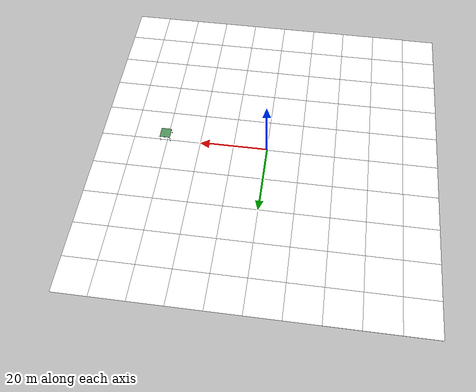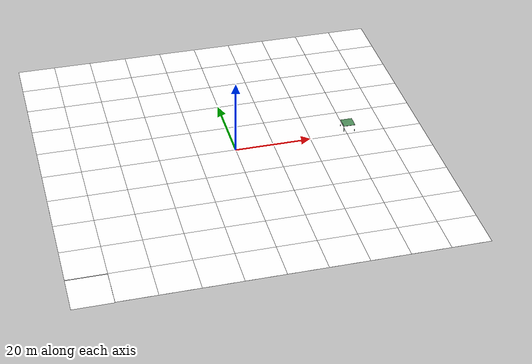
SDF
<sdf version="1.9">
 <world name="aruco_plain">
  <physics type="ode">
   <max_step_size>0.001</max_step_size>
   <real_time_factor>1.0</real_time_factor>
   <real_time_update_rate>1000</real_time_update_rate>
  </physics>
  <plugin filename="gz-sim-physics-system" name="gz::sim::systems::Physics"/>
  <plugin filename="gz-sim-sensors-system" name="gz::sim::systems::Sensors">
   <render_engine>ogre2</render_engine>
  </plugin>
  <plugin filename="gz-sim-user-commands-system" name="gz::sim::systems::UserCommands"/>
  <plugin filename="gz-sim-scene-broadcaster-system" name="gz::sim::systems::SceneBroadcaster"/>
  <plugin filename="gz-sim-imu-system" name="gz::sim::systems::Imu"/>
  <gravity>0 0 -9.8</gravity>
  <magnetic_field>6e-06 2.3e-05 -4.2e-05</magnetic_field>
  <atmosphere type="adiabatic"/>
  <scene>
   <grid>false</grid>
   <ambient>0.4 0.4 0.4 1</ambient>
   <background>0.7 0.7 0.7 1</background>
   <shadows>false</shadows>
  </scene>
  <include><uri>model://grass_ground</uri></include>
  <light name="sunUTC" type="directional">
   <pose>0 0 500 0 -0 0</pose>
   <cast_shadows>false</cast_shadows>
   <intensity>1</intensity>
   <direction>0.001 0.625 -0.78</direction>
   <diffuse>0.904 0.904 0.904 1</diffuse>
   <specular>0.271 0.271 0.271 1</specular>
  </light>
  <spherical_coordinates>
   <surface_model>EARTH_WGS84</surface_model>
   <world_frame_orientation>ENU</world_frame_orientation>
   <latitude_deg>47.397971057728974</latitude_deg>
   <longitude_deg>8.546163739800146</longitude_deg>
   <elevation>0</elevation>
  </spherical_coordinates>
  <include>
   <name>tent_target</name>
   <pose>30 0 0.55 0 0 0</pose>
   <uri>model://tent_green</uri>
   <static>true</static>
  </include>
 </world>
</sdf>

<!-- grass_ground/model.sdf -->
<sdf version="1.9">
  <model name="grass_ground">
    <static>true</static>
    <link name="link">
      <collision name="collision">
        <geometry>
          <plane>
            <normal>0 0 1</normal>
            <size>100 100</size>
          </plane>
        </geometry>
      </collision>
      <!-- Grid of 10x10m tiles -->
      <visual name="tile_0_0"><pose>-45 -45 0 0 0 0</pose><cast_shadows>false</cast_shadows><geometry><plane><normal>0 0 1</normal><size>10 10</size></plane></geometry><material><diffuse>1 1 1 1</diffuse><ambient>1 1 1 1</ambient><pbr><metal><albedo_map>materials/textures/grass_dry.png</albedo_map></metal></pbr></material></visual>
      <visual name="tile_1_0"><pose>-35 -45 0 0 0 0</pose><cast_shadows>false</cast_shadows><geometry><plane><normal>0 0 1</normal><size>10 10</size></plane></geometry><material><diffuse>1 1 1 1</diffuse><ambient>1 1 1 1</ambient><pbr><metal><albedo_map>materials/textures/grass_dry.png</albedo_map></metal></pbr></material></visual>
      <visual name="tile_2_0"><pose>-25 -45 0 0 0 0</pose><cast_shadows>false</cast_shadows><geometry><plane><normal>0 0 1</normal><size>10 10</size></plane></geometry><material><diffuse>1 1 1 1</diffuse><ambient>1 1 1 1</ambient><pbr><metal><albedo_map>materials/textures/grass_dry.png</albedo_map></metal></pbr></material></visual>
      <visual name="tile_3_0"><pose>-15 -45 0 0 0 0</pose><cast_shadows>false</cast_shadows><geometry><plane><normal>0 0 1</normal><size>10 10</size></plane></geometry><material><diffuse>1 1 1 1</diffuse><ambient>1 1 1 1</ambient><pbr><metal><albedo_map>materials/textures/grass_dry.png</albedo_map></metal></pbr></material></visual>
      <visual name="tile_4_0"><pose>-5 -45 0 0 0 0</pose><cast_shadows>false</cast_shadows><geometry><plane><normal>0 0 1</normal><size>10 10</size></plane></geometry><material><diffuse>1 1 1 1</diffuse><ambient>1 1 1 1</ambient><pbr><metal><albedo_map>materials/textures/grass_dry.png</albedo_map></metal></pbr></material></visual>
      <visual name="tile_5_0"><pose>5 -45 0 0 0 0</pose><cast_shadows>false</cast_shadows><geometry><plane><normal>0 0 1</normal><size>10 10</size></plane></geometry><material><diffuse>1 1 1 1</diffuse><ambient>1 1 1 1</ambient><pbr><metal><albedo_map>materials/textures/grass_dry.png</albedo_map></metal></pbr></material></visual>
      <visual name="tile_6_0"><pose>15 -45 0 0 0 0</pose><cast_shadows>false</cast_shadows><geometry><plane><normal>0 0 1</normal><size>10 10</size></plane></geometry><material><diffuse>1 1 1 1</diffuse><ambient>1 1 1 1</ambient><pbr><metal><albedo_map>materials/textures/grass_dry.png</albedo_map></metal></pbr></material></visual>
      <visual name="tile_7_0"><pose>25 -45 0 0 0 0</pose><cast_shadows>false</cast_shadows><geometry><plane><normal>0 0 1</normal><size>10 10</size></plane></geometry><material><diffuse>1 1 1 1</diffuse><ambient>1 1 1 1</ambient><pbr><metal><albedo_map>materials/textures/grass_dry.png</albedo_map></metal></pbr></material></visual>
      <visual name="tile_8_0"><pose>35 -45 0 0 0 0</pose><cast_shadows>false</cast_shadows><geometry><plane><normal>0 0 1</normal><size>10 10</size></plane></geometry><material><diffuse>1 1 1 1</diffuse><ambient>1 1 1 1</ambient><pbr><metal><albedo_map>materials/textures/grass_dry.png</albedo_map></metal></pbr></material></visual>
      <visual name="tile_9_0"><pose>45 -45 0 0 0 0</pose><cast_shadows>false</cast_shadows><geometry><plane><normal>0 0 1</normal><size>10 10</size></plane></geometry><material><diffuse>1 1 1 1</diffuse><ambient>1 1 1 1</ambient><pbr><metal><albedo_map>materials/textures/grass_dry.png</albedo_map></metal></pbr></material></visual>
      <visual name="tile_0_1"><pose>-45 -35 0 0 0 0</pose><cast_shadows>false</cast_shadows><geometry><plane><normal>0 0 1</normal><size>10 10</size></plane></geometry><material><diffuse>1 1 1 1</diffuse><ambient>1 1 1 1</ambient><pbr><metal><albedo_map>materials/textures/grass_dry.png</albedo_map></metal></pbr></material></visual>
      <visual name="tile_1_1"><pose>-35 -35 0 0 0 0</pose><cast_shadows>false</cast_shadows><geometry><plane><normal>0 0 1</normal><size>10 10</size></plane></geometry><material><diffuse>1 1 1 1</diffuse><ambient>1 1 1 1</ambient><pbr><metal><albedo_map>materials/textures/grass_dry.png</albedo_map></metal></pbr></material></visual>
      <visual name="tile_2_1"><pose>-25 -35 0 0 0 0</pose><cast_shadows>false</cast_shadows><geometry><plane><normal>0 0 1</normal><size>10 10</size></plane></geometry><material><diffuse>1 1 1 1</diffuse><ambient>1 1 1 1</ambient><pbr><metal><albedo_map>materials/textures/grass_dry.png</albedo_map></metal></pbr></material></visual>
      <visual name="tile_3_1"><pose>-15 -35 0 0 0 0</pose><cast_shadows>false</cast_shadows><geometry><plane><normal>0 0 1</normal><size>10 10</size></plane></geometry><material><diffuse>1 1 1 1</diffuse><ambient>1 1 1 1</ambient><pbr><metal><albedo_map>materials/textures/grass_dry.png</albedo_map></metal></pbr></material></visual>
      <visual name="tile_4_1"><pose>-5 -35 0 0 0 0</pose><cast_shadows>false</cast_shadows><geometry><plane><normal>0 0 1</normal><size>10 10</size></plane></geometry><material><diffuse>1 1 1 1</diffuse><ambient>1 1 1 1</ambient><pbr><metal><albedo_map>materials/textures/grass_dry.png</albedo_map></metal></pbr></material></visual>
      <visual name="tile_5_1"><pose>5 -35 0 0 0 0</pose><cast_shadows>false</cast_shadows><geometry><plane><normal>0 0 1</normal><size>10 10</size></plane></geometry><material><diffuse>1 1 1 1</diffuse><ambient>1 1 1 1</ambient><pbr><metal><albedo_map>materials/textures/grass_dry.png</albedo_map></metal></pbr></material></visual>
      <visual name="tile_6_1"><pose>15 -35 0 0 0 0</pose><cast_shadows>false</cast_shadows><geometry><plane><normal>0 0 1</normal><size>10 10</size></plane></geometry><material><diffuse>1 1 1 1</diffuse><ambient>1 1 1 1</ambient><pbr><metal><albedo_map>materials/textures/grass_dry.png</albedo_map></metal></pbr></material></visual>
      <visual name="tile_7_1"><pose>25 -35 0 0 0 0</pose><cast_shadows>false</cast_shadows><geometry><plane><normal>0 0 1</normal><size>10 10</size></plane></geometry><material><diffuse>1 1 1 1</diffuse><ambient>1 1 1 1</ambient><pbr><metal><albedo_map>materials/textures/grass_dry.png</albedo_map></metal></pbr></material></visual>
      <visual name="tile_8_1"><pose>35 -35 0 0 0 0</pose><cast_shadows>false</cast_shadows><geometry><plane><normal>0 0 1</normal><size>10 10</size></plane></geometry><material><diffuse>1 1 1 1</diffuse><ambient>1 1 1 1</ambient><pbr><metal><albedo_map>materials/textures/grass_dry.png</albedo_map></metal></pbr></material></visual>
      <visual name="tile_9_1"><pose>45 -35 0 0 0 0</pose><cast_shadows>false</cast_shadows><geometry><plane><normal>0 0 1</normal><size>10 10</size></plane></geometry><material><diffuse>1 1 1 1</diffuse><ambient>1 1 1 1</ambient><pbr><metal><albedo_map>materials/textures/grass_dry.png</albedo_map></metal></pbr></material></visual>
      <visual name="tile_0_2"><pose>-45 -25 0 0 0 0</pose><cast_shadows>false</cast_shadows><geometry><plane><normal>0 0 1</normal><size>10 10</size></plane></geometry><material><diffuse>1 1 1 1</diffuse><ambient>1 1 1 1</ambient><pbr><metal><albedo_map>materials/textures/grass_dry.png</albedo_map></metal></pbr></material></visual>
      <visual name="tile_1_2"><pose>-35 -25 0 0 0 0</pose><cast_shadows>false</cast_shadows><geometry><plane><normal>0 0 1</normal><size>10 10</size></plane></geometry><material><diffuse>1 1 1 1</diffuse><ambient>1 1 1 1</ambient><pbr><metal><albedo_map>materials/textures/grass_dry.png</albedo_map></metal></pbr></material></visual>
      <visual name="tile_2_2"><pose>-25 -25 0 0 0 0</pose><cast_shadows>false</cast_shadows><geometry><plane><normal>0 0 1</normal><size>10 10</size></plane></geometry><material><diffuse>1 1 1 1</diffuse><ambient>1 1 1 1</ambient><pbr><metal><albedo_map>materials/textures/grass_dry.png</albedo_map></metal></pbr></material></visual>
      <visual name="tile_3_2"><pose>-15 -25 0 0 0 0</pose><cast_shadows>false</cast_shadows><geometry><plane><normal>0 0 1</normal><size>10 10</size></plane></geometry><material><diffuse>1 1 1 1</diffuse><ambient>1 1 1 1</ambient><pbr><metal><albedo_map>materials/textures/grass_dry.png</albedo_map></metal></pbr></material></visual>
      <visual name="tile_4_2"><pose>-5 -25 0 0 0 0</pose><cast_shadows>false</cast_shadows><geometry><plane><normal>0 0 1</normal><size>10 10</size></plane></geometry><material><diffuse>1 1 1 1</diffuse><ambient>1 1 1 1</ambient><pbr><metal><albedo_map>materials/textures/grass_dry.png</albedo_map></metal></pbr></material></visual>
      <visual name="tile_5_2"><pose>5 -25 0 0 0 0</pose><cast_shadows>false</cast_shadows><geometry><plane><normal>0 0 1</normal><size>10 10</size></plane></geometry><material><diffuse>1 1 1 1</diffuse><ambient>1 1 1 1</ambient><pbr><metal><albedo_map>materials/textures/grass_dry.png</albedo_map></metal></pbr></material></visual>
      <visual name="tile_6_2"><pose>15 -25 0 0 0 0</pose><cast_shadows>false</cast_shadows><geometry><plane><normal>0 0 1</normal><size>10 10</size></plane></geometry><material><diffuse>1 1 1 1</diffuse><ambient>1 1 1 1</ambient><pbr><metal><albedo_map>materials/textures/grass_dry.png</albedo_map></metal></pbr></material></visual>
      <visual name="tile_7_2"><pose>25 -25 0 0 0 0</pose><cast_shadows>false</cast_shadows><geometry><plane><normal>0 0 1</normal><size>10 10</size></plane></geometry><material><diffuse>1 1 1 1</diffuse><ambient>1 1 1 1</ambient><pbr><metal><albedo_map>materials/textures/grass_dry.png</albedo_map></metal></pbr></material></visual>
      <visual name="tile_8_2"><pose>35 -25 0 0 0 0</pose><cast_shadows>false</cast_shadows><geometry><plane><normal>0 0 1</normal><size>10 10</size></plane></geometry><material><diffuse>1 1 1 1</diffuse><ambient>1 1 1 1</ambient><pbr><metal><albedo_map>materials/textures/grass_dry.png</albedo_map></metal></pbr></material></visual>
      <visual name="tile_9_2"><pose>45 -25 0 0 0 0</pose><cast_shadows>false</cast_shadows><geometry><plane><normal>0 0 1</normal><size>10 10</size></plane></geometry><material><diffuse>1 1 1 1</diffuse><ambient>1 1 1 1</ambient><pbr><metal><albedo_map>materials/textures/grass_dry.png</albedo_map></metal></pbr></material></visual>
      <visual name="tile_0_3"><pose>-45 -15 0 0 0 0</pose><cast_shadows>false</cast_shadows><geometry><plane><normal>0 0 1</normal><size>10 10</size></plane></geometry><material><diffuse>1 1 1 1</diffuse><ambient>1 1 1 1</ambient><pbr><metal><albedo_map>materials/textures/grass_dry.png</albedo_map></metal></pbr></material></visual>
      <visual name="tile_1_3"><pose>-35 -15 0 0 0 0</pose><cast_shadows>false</cast_shadows><geometry><plane><normal>0 0 1</normal><size>10 10</size></plane></geometry><material><diffuse>1 1 1 1</diffuse><ambient>1 1 1 1</ambient><pbr><metal><albedo_map>materials/textures/grass_dry.png</albedo_map></metal></pbr></material></visual>
      <visual name="tile_2_3"><pose>-25 -15 0 0 0 0</pose><cast_shadows>false</cast_shadows><geometry><plane><normal>0 0 1</normal><size>10 10</size></plane></geometry><material><diffuse>1 1 1 1</diffuse><ambient>1 1 1 1</ambient><pbr><metal><albedo_map>materials/textures/grass_dry.png</albedo_map></metal></pbr></material></visual>
      <visual name="tile_3_3"><pose>-15 -15 0 0 0 0</pose><cast_shadows>false</cast_shadows><geometry><plane><normal>0 0 1</normal><size>10 10</size></plane></geometry><material><diffuse>1 1 1 1</diffuse><ambient>1 1 1 1</ambient><pbr><metal><albedo_map>materials/textures/grass_dry.png</albedo_map></metal></pbr></material></visual>
      <visual name="tile_4_3"><pose>-5 -15 0 0 0 0</pose><cast_shadows>false</cast_shadows><geometry><plane><normal>0 0 1</normal><size>10 10</size></plane></geometry><material><diffuse>1 1 1 1</diffuse><ambient>1 1 1 1</ambient><pbr><metal><albedo_map>materials/textures/grass_dry.png</albedo_map></metal></pbr></material></visual>
      <visual name="tile_5_3"><pose>5 -15 0 0 0 0</pose><cast_shadows>false</cast_shadows><geometry><plane><normal>0 0 1</normal><size>10 10</size></plane></geometry><material><diffuse>1 1 1 1</diffuse><ambient>1 1 1 1</ambient><pbr><metal><albedo_map>materials/textures/grass_dry.png</albedo_map></metal></pbr></material></visual>
      <visual name="tile_6_3"><pose>15 -15 0 0 0 0</pose><cast_shadows>false</cast_shadows><geometry><plane><normal>0 0 1</normal><size>10 10</size></plane></geometry><material><diffuse>1 1 1 1</diffuse><ambient>1 1 1 1</ambient><pbr><metal><albedo_map>materials/textures/grass_dry.png</albedo_map></metal></pbr></material></visual>
      <visual name="tile_7_3"><pose>25 -15 0 0 0 0</pose><cast_shadows>false</cast_shadows><geometry><plane><normal>0 0 1</normal><size>10 10</size></plane></geometry><material><diffuse>1 1 1 1</diffuse><ambient>1 1 1 1</ambient><pbr><metal><albedo_map>materials/textures/grass_dry.png</albedo_map></metal></pbr></material></visual>
      <visual name="tile_8_3"><pose>35 -15 0 0 0 0</pose><cast_shadows>false</cast_shadows><geometry><plane><normal>0 0 1</normal><size>10 10</size></plane></geometry><material><diffuse>1 1 1 1</diffuse><ambient>1 1 1 1</ambient><pbr><metal><albedo_map>materials/textures/grass_dry.png</albedo_map></metal></pbr></material></visual>
      <visual name="tile_9_3"><pose>45 -15 0 0 0 0</pose><cast_shadows>false</cast_shadows><geometry><plane><normal>0 0 1</normal><size>10 10</size></plane></geometry><material><diffuse>1 1 1 1</diffuse><ambient>1 1 1 1</ambient><pbr><metal><albedo_map>materials/textures/grass_dry.png</albedo_map></metal></pbr></material></visual>
      <visual name="tile_0_4"><pose>-45 -5 0 0 0 0</pose><cast_shadows>false</cast_shadows><geometry><plane><normal>0 0 1</normal><size>10 10</size></plane></geometry><material><diffuse>1 1 1 1</diffuse><ambient>1 1 1 1</ambient><pbr><metal><albedo_map>materials/textures/grass_dry.png</albedo_map></metal></pbr></material></visual>
      <visual name="tile_1_4"><pose>-35 -5 0 0 0 0</pose><cast_shadows>false</cast_shadows><geometry><plane><normal>0 0 1</normal><size>10 10</size></plane></geometry><material><diffuse>1 1 1 1</diffuse><ambient>1 1 1 1</ambient><pbr><metal><albedo_map>materials/textures/grass_dry.png</albedo_map></metal></pbr></material></visual>
      <visual name="tile_2_4"><pose>-25 -5 0 0 0 0</pose><cast_shadows>false</cast_shadows><geometry><plane><normal>0 0 1</normal><size>10 10</size></plane></geometry><material><diffuse>1 1 1 1</diffuse><ambient>1 1 1 1</ambient><pbr><metal><albedo_map>materials/textures/grass_dry.png</albedo_map></metal></pbr></material></visual>
      <visual name="tile_3_4"><pose>-15 -5 0 0 0 0</pose><cast_shadows>false</cast_shadows><geometry><plane><normal>0 0 1</normal><size>10 10</size></plane></geometry><material><diffuse>1 1 1 1</diffuse><ambient>1 1 1 1</ambient><pbr><metal><albedo_map>materials/textures/grass_dry.png</albedo_map></metal></pbr></material></visual>
      <visual name="tile_4_4"><pose>-5 -5 0 0 0 0</pose><cast_shadows>false</cast_shadows><geometry><plane><normal>0 0 1</normal><size>10 10</size></plane></geometry><material><diffuse>1 1 1 1</diffuse><ambient>1 1 1 1</ambient><pbr><metal><albedo_map>materials/textures/grass_dry.png</albedo_map></metal></pbr></material></visual>
      <visual name="tile_5_4"><pose>5 -5 0 0 0 0</pose><cast_shadows>false</cast_shadows><geometry><plane><normal>0 0 1</normal><size>10 10</size></plane></geometry><material><diffuse>1 1 1 1</diffuse><ambient>1 1 1 1</ambient><pbr><metal><albedo_map>materials/textures/grass_dry.png</albedo_map></metal></pbr></material></visual>
      <visual name="tile_6_4"><pose>15 -5 0 0 0 0</pose><cast_shadows>false</cast_shadows><geometry><plane><normal>0 0 1</normal><size>10 10</size></plane></geometry><material><diffuse>1 1 1 1</diffuse><ambient>1 1 1 1</ambient><pbr><metal><albedo_map>materials/textures/grass_dry.png</albedo_map></metal></pbr></material></visual>
      <visual name="tile_7_4"><pose>25 -5 0 0 0 0</pose><cast_shadows>false</cast_shadows><geometry><plane><normal>0 0 1</normal><size>10 10</size></plane></geometry><material><diffuse>1 1 1 1</diffuse><ambient>1 1 1 1</ambient><pbr><metal><albedo_map>materials/textures/grass_dry.png</albedo_map></metal></pbr></material></visual>
      <visual name="tile_8_4"><pose>35 -5 0 0 0 0</pose><cast_shadows>false</cast_shadows><geometry><plane><normal>0 0 1</normal><size>10 10</size></plane></geometry><material><diffuse>1 1 1 1</diffuse><ambient>1 1 1 1</ambient><pbr><metal><albedo_map>materials/textures/grass_dry.png</albedo_map></metal></pbr></material></visual>
      <visual name="tile_9_4"><pose>45 -5 0 0 0 0</pose><cast_shadows>false</cast_shadows><geometry><plane><normal>0 0 1</normal><size>10 10</size></plane></geometry><material><diffuse>1 1 1 1</diffuse><ambient>1 1 1 1</ambient><pbr><metal><albedo_map>materials/textures/grass_dry.png</albedo_map></metal></pbr></material></visual>
      <visual name="tile_0_5"><pose>-45 5 0 0 0 0</pose><cast_shadows>false</cast_shadows><geometry><plane><normal>0 0 1</normal><size>10 10</size></plane></geometry><material><diffuse>1 1 1 1</diffuse><ambient>1 1 1 1</ambient><pbr><metal><albedo_map>materials/textures/grass_dry.png</albedo_map></metal></pbr></material></visual>
      <visual name="tile_1_5"><pose>-35 5 0 0 0 0</pose><cast_shadows>false</cast_shadows><geometry><plane><normal>0 0 1</normal><size>10 10</size></plane></geometry><material><diffuse>1 1 1 1</diffuse><ambient>1 1 1 1</ambient><pbr><metal><albedo_map>materials/textures/grass_dry.png</albedo_map></metal></pbr></material></visual>
      <visual name="tile_2_5"><pose>-25 5 0 0 0 0</pose><cast_shadows>false</cast_shadows><geometry><plane><normal>0 0 1</normal><size>10 10</size></plane></geometry><material><diffuse>1 1 1 1</diffuse><ambient>1 1 1 1</ambient><pbr><metal><albedo_map>materials/textures/grass_dry.png</albedo_map></metal></pbr></material></visual>
      <visual name="tile_3_5"><pose>-15 5 0 0 0 0</pose><cast_shadows>false</cast_shadows><geometry><plane><normal>0 0 1</normal><size>10 10</size></plane></geometry><material><diffuse>1 1 1 1</diffuse><ambient>1 1 1 1</ambient><pbr><metal><albedo_map>materials/textures/grass_dry.png</albedo_map></metal></pbr></material></visual>
      <visual name="tile_4_5"><pose>-5 5 0 0 0 0</pose><cast_shadows>false</cast_shadows><geometry><plane><normal>0 0 1</normal><size>10 10</size></plane></geometry><material><diffuse>1 1 1 1</diffuse><ambient>1 1 1 1</ambient><pbr><metal><albedo_map>materials/textures/grass_dry.png</albedo_map></metal></pbr></material></visual>
      <visual name="tile_5_5"><pose>5 5 0 0 0 0</pose><cast_shadows>false</cast_shadows><geometry><plane><normal>0 0 1</normal><size>10 10</size></plane></geometry><material><diffuse>1 1 1 1</diffuse><ambient>1 1 1 1</ambient><pbr><metal><albedo_map>materials/textures/grass_dry.png</albedo_map></metal></pbr></material></visual>
      <visual name="tile_6_5"><pose>15 5 0 0 0 0</pose><cast_shadows>false</cast_shadows><geometry><plane><normal>0 0 1</normal><size>10 10</size></plane></geometry><material><diffuse>1 1 1 1</diffuse><ambient>1 1 1 1</ambient><pbr><metal><albedo_map>materials/textures/grass_dry.png</albedo_map></metal></pbr></material></visual>
      <visual name="tile_7_5"><pose>25 5 0 0 0 0</pose><cast_shadows>false</cast_shadows><geometry><plane><normal>0 0 1</normal><size>10 10</size></plane></geometry><material><diffuse>1 1 1 1</diffuse><ambient>1 1 1 1</ambient><pbr><metal><albedo_map>materials/textures/grass_dry.png</albedo_map></metal></pbr></material></visual>
      <visual name="tile_8_5"><pose>35 5 0 0 0 0</pose><cast_shadows>false</cast_shadows><geometry><plane><normal>0 0 1</normal><size>10 10</size></plane></geometry><material><diffuse>1 1 1 1</diffuse><ambient>1 1 1 1</ambient><pbr><metal><albedo_map>materials/textures/grass_dry.png</albedo_map></metal></pbr></material></visual>
      <visual name="tile_9_5"><pose>45 5 0 0 0 0</pose><cast_shadows>false</cast_shadows><geometry><plane><normal>0 0 1</normal><size>10 10</size></plane></geometry><material><diffuse>1 1 1 1</diffuse><ambient>1 1 1 1</ambient><pbr><metal><albedo_map>materials/textures/grass_dry.png</albedo_map></metal></pbr></material></visual>
      <visual name="tile_0_6"><pose>-45 15 0 0 0 0</pose><cast_shadows>false</cast_shadows><geometry><plane><normal>0 0 1</normal><size>10 10</size></plane></geometry><material><diffuse>1 1 1 1</diffuse><ambient>1 1 1 1</ambient><pbr><metal><albedo_map>materials/textures/grass_dry.png</albedo_map></metal></pbr></material></visual>
      <visual name="tile_1_6"><pose>-35 15 0 0 0 0</pose><cast_shadows>false</cast_shadows><geometry><plane><normal>0 0 1</normal><size>10 10</size></plane></geometry><material><diffuse>1 1 1 1</diffuse><ambient>1 1 1 1</ambient><pbr><metal><albedo_map>materials/textures/grass_dry.png</albedo_map></metal></pbr></material></visual>
      <visual name="tile_2_6"><pose>-25 15 0 0 0 0</pose><cast_shadows>false</cast_shadows><geometry><plane><normal>0 0 1</normal><size>10 10</size></plane></geometry><material><diffuse>1 1 1 1</diffuse><ambient>1 1 1 1</ambient><pbr><metal><albedo_map>materials/textures/grass_dry.png</albedo_map></metal></pbr></material></visual>
      <visual name="tile_3_6"><pose>-15 15 0 0 0 0</pose><cast_shadows>false</cast_shadows><geometry><plane><normal>0 0 1</normal><size>10 10</size></plane></geometry><material><diffuse>1 1 1 1</diffuse><ambient>1 1 1 1</ambient><pbr><metal><albedo_map>materials/textures/grass_dry.png</albedo_map></metal></pbr></material></visual>
      <visual name="tile_4_6"><pose>-5 15 0 0 0 0</pose><cast_shadows>false</cast_shadows><geometry><plane><normal>0 0 1</normal><size>10 10</size></plane></geometry><material><diffuse>1 1 1 1</diffuse><ambient>1 1 1 1</ambient><pbr><metal><albedo_map>materials/textures/grass_dry.png</albedo_map></metal></pbr></material></visual>
      <visual name="tile_5_6"><pose>5 15 0 0 0 0</pose><cast_shadows>false</cast_shadows><geometry><plane><normal>0 0 1</normal><size>10 10</size></plane></geometry><material><diffuse>1 1 1 1</diffuse><ambient>1 1 1 1</ambient><pbr><metal><albedo_map>materials/textures/grass_dry.png</albedo_map></metal></pbr></material></visual>
      <visual name="tile_6_6"><pose>15 15 0 0 0 0</pose><cast_shadows>false</cast_shadows><geometry><plane><normal>0 0 1</normal><size>10 10</size></plane></geometry><material><diffuse>1 1 1 1</diffuse><ambient>1 1 1 1</ambient><pbr><metal><albedo_map>materials/textures/grass_dry.png</albedo_map></metal></pbr></material></visual>
      <visual name="tile_7_6"><pose>25 15 0 0 0 0</pose><cast_shadows>false</cast_shadows><geometry><plane><normal>0 0 1</normal><size>10 10</size></plane></geometry><material><diffuse>1 1 1 1</diffuse><ambient>1 1 1 1</ambient><pbr><metal><albedo_map>materials/textures/grass_dry.png</albedo_map></metal></pbr></material></visual>
      <visual name="tile_8_6"><pose>35 15 0 0 0 0</pose><cast_shadows>false</cast_shadows><geometry><plane><normal>0 0 1</normal><size>10 10</size></plane></geometry><material><diffuse>1 1 1 1</diffuse><ambient>1 1 1 1</ambient><pbr><metal><albedo_map>materials/textures/grass_dry.png</albedo_map></metal></pbr></material></visual>
      <visual name="tile_9_6"><pose>45 15 0 0 0 0</pose><cast_shadows>false</cast_shadows><geometry><plane><normal>0 0 1</normal><size>10 10</size></plane></geometry><material><diffuse>1 1 1 1</diffuse><ambient>1 1 1 1</ambient><pbr><metal><albedo_map>materials/textures/grass_dry.png</albedo_map></metal></pbr></material></visual>
      <visual name="tile_0_7"><pose>-45 25 0 0 0 0</pose><cast_shadows>false</cast_shadows><geometry><plane><normal>0 0 1</normal><size>10 10</size></plane></geometry><material><diffuse>1 1 1 1</diffuse><ambient>1 1 1 1</ambient><pbr><metal><albedo_map>materials/textures/grass_dry.png</albedo_map></metal></pbr></material></visual>
      <visual name="tile_1_7"><pose>-35 25 0 0 0 0</pose><cast_shadows>false</cast_shadows><geometry><plane><normal>0 0 1</normal><size>10 10</size></plane></geometry><material><diffuse>1 1 1 1</diffuse><ambient>1 1 1 1</ambient><pbr><metal><albedo_map>materials/textures/grass_dry.png</albedo_map></metal></pbr></material></visual>
      <visual name="tile_2_7"><pose>-25 25 0 0 0 0</pose><cast_shadows>false</cast_shadows><geometry><plane><normal>0 0 1</normal><size>10 10</size></plane></geometry><material><diffuse>1 1 1 1</diffuse><ambient>1 1 1 1</ambient><pbr><metal><albedo_map>materials/textures/grass_dry.png</albedo_map></metal></pbr></material></visual>
      <visual name="tile_3_7"><pose>-15 25 0 0 0 0</pose><cast_shadows>false</cast_shadows><geometry><plane><normal>0 0 1</normal><size>10 10</size></plane></geometry><material><diffuse>1 1 1 1</diffuse><ambient>1 1 1 1</ambient><pbr><metal><albedo_map>materials/textures/grass_dry.png</albedo_map></metal></pbr></material></visual>
      <visual name="tile_4_7"><pose>-5 25 0 0 0 0</pose><cast_shadows>false</cast_shadows><geometry><plane><normal>0 0 1</normal><size>10 10</size></plane></geometry><material><diffuse>1 1 1 1</diffuse><ambient>1 1 1 1</ambient><pbr><metal><albedo_map>materials/textures/grass_dry.png</albedo_map></metal></pbr></material></visual>
      <visual name="tile_5_7"><pose>5 25 0 0 0 0</pose><cast_shadows>false</cast_shadows><geometry><plane><normal>0 0 1</normal><size>10 10</size></plane></geometry><material><diffuse>1 1 1 1</diffuse><ambient>1 1 1 1</ambient><pbr><metal><albedo_map>materials/textures/grass_dry.png</albedo_map></metal></pbr></material></visual>
      <visual name="tile_6_7"><pose>15 25 0 0 0 0</pose><cast_shadows>false</cast_shadows><geometry><plane><normal>0 0 1</normal><size>10 10</size></plane></geometry><material><diffuse>1 1 1 1</diffuse><ambient>1 1 1 1</ambient><pbr><metal><albedo_map>materials/textures/grass_dry.png</albedo_map></metal></pbr></material></visual>
      <visual name="tile_7_7"><pose>25 25 0 0 0 0</pose><cast_shadows>false</cast_shadows><geometry><plane><normal>0 0 1</normal><size>10 10</size></plane></geometry><material><diffuse>1 1 1 1</diffuse><ambient>1 1 1 1</ambient><pbr><metal><albedo_map>materials/textures/grass_dry.png</albedo_map></metal></pbr></material></visual>
      <visual name="tile_8_7"><pose>35 25 0 0 0 0</pose><cast_shadows>false</cast_shadows><geometry><plane><normal>0 0 1</normal><size>10 10</size></plane></geometry><material><diffuse>1 1 1 1</diffuse><ambient>1 1 1 1</ambient><pbr><metal><albedo_map>materials/textures/grass_dry.png</albedo_map></metal></pbr></material></visual>
      <visual name="tile_9_7"><pose>45 25 0 0 0 0</pose><cast_shadows>false</cast_shadows><geometry><plane><normal>0 0 1</normal><size>10 10</size></plane></geometry><material><diffuse>1 1 1 1</diffuse><ambient>1 1 1 1</ambient><pbr><metal><albedo_map>materials/textures/grass_dry.png</albedo_map></metal></pbr></material></visual>
      <visual name="tile_0_8"><pose>-45 35 0 0 0 0</pose><cast_shadows>false</cast_shadows><geometry><plane><normal>0 0 1</normal><size>10 10</size></plane></geometry><material><diffuse>1 1 1 1</diffuse><ambient>1 1 1 1</ambient><pbr><metal><albedo_map>materials/textures/grass_dry.png</albedo_map></metal></pbr></material></visual>
      <visual name="tile_1_8"><pose>-35 35 0 0 0 0</pose><cast_shadows>false</cast_shadows><geometry><plane><normal>0 0 1</normal><size>10 10</size></plane></geometry><material><diffuse>1 1 1 1</diffuse><ambient>1 1 1 1</ambient><pbr><metal><albedo_map>materials/textures/grass_dry.png</albedo_map></metal></pbr></material></visual>
      <visual name="tile_2_8"><pose>-25 35 0 0 0 0</pose><cast_shadows>false</cast_shadows><geometry><plane><normal>0 0 1</normal><size>10 10</size></plane></geometry><material><diffuse>1 1 1 1</diffuse><ambient>1 1 1 1</ambient><pbr><metal><albedo_map>materials/textures/grass_dry.png</albedo_map></metal></pbr></material></visual>
      <visual name="tile_3_8"><pose>-15 35 0 0 0 0</pose><cast_shadows>false</cast_shadows><geometry><plane><normal>0 0 1</normal><size>10 10</size></plane></geometry><material><diffuse>1 1 1 1</diffuse><ambient>1 1 1 1</ambient><pbr><metal><albedo_map>materials/textures/grass_dry.png</albedo_map></metal></pbr></material></visual>
      <visual name="tile_4_8"><pose>-5 35 0 0 0 0</pose><cast_shadows>false</cast_shadows><geometry><plane><normal>0 0 1</normal><size>10 10</size></plane></geometry><material><diffuse>1 1 1 1</diffuse><ambient>1 1 1 1</ambient><pbr><metal><albedo_map>materials/textures/grass_dry.png</albedo_map></metal></pbr></material></visual>
      <visual name="tile_5_8"><pose>5 35 0 0 0 0</pose><cast_shadows>false</cast_shadows><geometry><plane><normal>0 0 1</normal><size>10 10</size></plane></geometry><material><diffuse>1 1 1 1</diffuse><ambient>1 1 1 1</ambient><pbr><metal><albedo_map>materials/textures/grass_dry.png</albedo_map></metal></pbr></material></visual>
      <visual name="tile_6_8"><pose>15 35 0 0 0 0</pose><cast_shadows>false</cast_shadows><geometry><plane><normal>0 0 1</normal><size>10 10</size></plane></geometry><material><diffuse>1 1 1 1</diffuse><ambient>1 1 1 1</ambient><pbr><metal><albedo_map>materials/textures/grass_dry.png</albedo_map></metal></pbr></material></visual>
      <visual name="tile_7_8"><pose>25 35 0 0 0 0</pose><cast_shadows>false</cast_shadows><geometry><plane><normal>0 0 1</normal><size>10 10</size></plane></geometry><material><diffuse>1 1 1 1</diffuse><ambient>1 1 1 1</ambient><pbr><metal><albedo_map>materials/textures/grass_dry.png</albedo_map></metal></pbr></material></visual>
      <visual name="tile_8_8"><pose>35 35 0 0 0 0</pose><cast_shadows>false</cast_shadows><geometry><plane><normal>0 0 1</normal><size>10 10</size></plane></geometry><material><diffuse>1 1 1 1</diffuse><ambient>1 1 1 1</ambient><pbr><metal><albedo_map>materials/textures/grass_dry.png</albedo_map></metal></pbr></material></visual>
      <visual name="tile_9_8"><pose>45 35 0 0 0 0</pose><cast_shadows>false</cast_shadows><geometry><plane><normal>0 0 1</normal><size>10 10</size></plane></geometry><material><diffuse>1 1 1 1</diffuse><ambient>1 1 1 1</ambient><pbr><metal><albedo_map>materials/textures/grass_dry.png</albedo_map></metal></pbr></material></visual>
      <visual name="tile_0_9"><pose>-45 45 0 0 0 0</pose><cast_shadows>false</cast_shadows><geometry><plane><normal>0 0 1</normal><size>10 10</size></plane></geometry><material><diffuse>1 1 1 1</diffuse><ambient>1 1 1 1</ambient><pbr><metal><albedo_map>materials/textures/grass_dry.png</albedo_map></metal></pbr></material></visual>
      <visual name="tile_1_9"><pose>-35 45 0 0 0 0</pose><cast_shadows>false</cast_shadows><geometry><plane><normal>0 0 1</normal><size>10 10</size></plane></geometry><material><diffuse>1 1 1 1</diffuse><ambient>1 1 1 1</ambient><pbr><metal><albedo_map>materials/textures/grass_dry.png</albedo_map></metal></pbr></material></visual>
      <visual name="tile_2_9"><pose>-25 45 0 0 0 0</pose><cast_shadows>false</cast_shadows><geometry><plane><normal>0 0 1</normal><size>10 10</size></plane></geometry><material><diffuse>1 1 1 1</diffuse><ambient>1 1 1 1</ambient><pbr><metal><albedo_map>materials/textures/grass_dry.png</albedo_map></metal></pbr></material></visual>
      <visual name="tile_3_9"><pose>-15 45 0 0 0 0</pose><cast_shadows>false</cast_shadows><geometry><plane><normal>0 0 1</normal><size>10 10</size></plane></geometry><material><diffuse>1 1 1 1</diffuse><ambient>1 1 1 1</ambient><pbr><metal><albedo_map>materials/textures/grass_dry.png</albedo_map></metal></pbr></material></visual>
      <visual name="tile_4_9"><pose>-5 45 0 0 0 0</pose><cast_shadows>false</cast_shadows><geometry><plane><normal>0 0 1</normal><size>10 10</size></plane></geometry><material><diffuse>1 1 1 1</diffuse><ambient>1 1 1 1</ambient><pbr><metal><albedo_map>materials/textures/grass_dry.png</albedo_map></metal></pbr></material></visual>
      <visual name="tile_5_9"><pose>5 45 0 0 0 0</pose><cast_shadows>false</cast_shadows><geometry><plane><normal>0 0 1</normal><size>10 10</size></plane></geometry><material><diffuse>1 1 1 1</diffuse><ambient>1 1 1 1</ambient><pbr><metal><albedo_map>materials/textures/grass_dry.png</albedo_map></metal></pbr></material></visual>
      <visual name="tile_6_9"><pose>15 45 0 0 0 0</pose><cast_shadows>false</cast_shadows><geometry><plane><normal>0 0 1</normal><size>10 10</size></plane></geometry><material><diffuse>1 1 1 1</diffuse><ambient>1 1 1 1</ambient><pbr><metal><albedo_map>materials/textures/grass_dry.png</albedo_map></metal></pbr></material></visual>
      <visual name="tile_7_9"><pose>25 45 0 0 0 0</pose><cast_shadows>false</cast_shadows><geometry><plane><normal>0 0 1</normal><size>10 10</size></plane></geometry><material><diffuse>1 1 1 1</diffuse><ambient>1 1 1 1</ambient><pbr><metal><albedo_map>materials/textures/grass_dry.png</albedo_map></metal></pbr></material></visual>
      <visual name="tile_8_9"><pose>35 45 0 0 0 0</pose><cast_shadows>false</cast_shadows><geometry><plane><normal>0 0 1</normal><size>10 10</size></plane></geometry><material><diffuse>1 1 1 1</diffuse><ambient>1 1 1 1</ambient><pbr><metal><albedo_map>materials/textures/grass_dry.png</albedo_map></metal></pbr></material></visual>
      <visual name="tile_9_9"><pose>45 45 0 0 0 0</pose><cast_shadows>false</cast_shadows><geometry><plane><normal>0 0 1</normal><size>10 10</size></plane></geometry><material><diffuse>1 1 1 1</diffuse><ambient>1 1 1 1</ambient><pbr><metal><albedo_map>materials/textures/grass_dry.png</albedo_map></metal></pbr></material></visual>
    </link>
  </model>
</sdf>

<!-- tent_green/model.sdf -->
<sdf version="1.6">
  <model name="tent_green">
    <static>true</static>
    <link name="base_link">
      <visual name="visual">
        <geometry>
          <mesh>
            <uri>model://tent/mesh/tent.dae</uri>
          </mesh>
        </geometry>
        <material>
          <ambient>0.24 0.42 0.28 1.0</ambient>
          <diffuse>0.30 0.55 0.35 1.0</diffuse>
          <specular>0.08 0.12 0.08 1.0</specular>
        </material>
      </visual>
      <collision name="collision">
        <pose>0 0 1.5 0 0 0</pose>
        <geometry>
          <box>
            <size>3.0 3.0 3.0</size>
          </box>
        </geometry>
      </collision>
    </link>
  </model>
</sdf>
